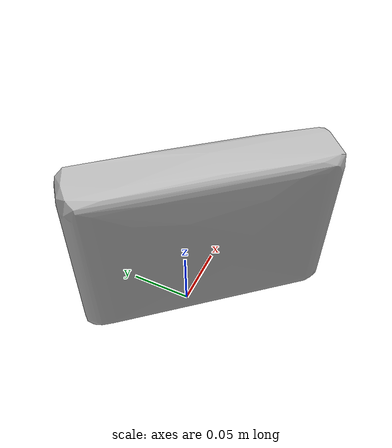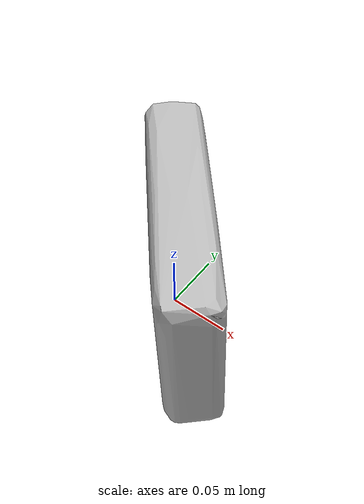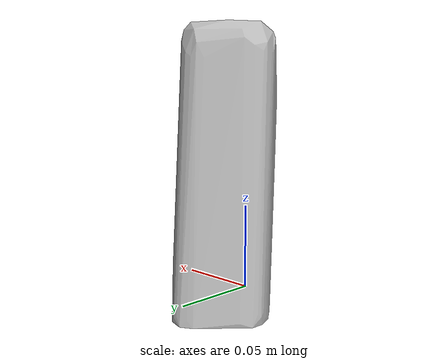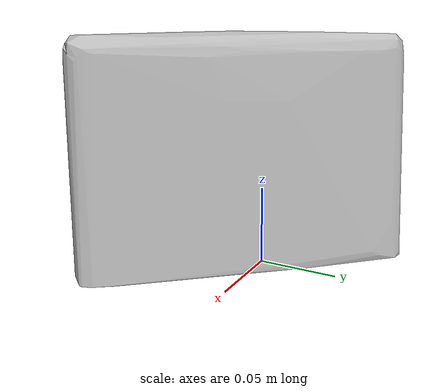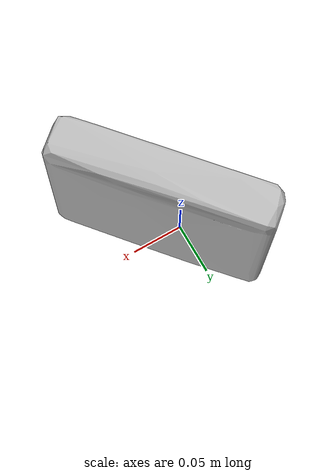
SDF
<?xml version='1.0'?>
<sdf version="1.4">
  <model name="nutrigrain_apple_cinnamon">
    <static>false</static>
    <link name="link">
      <inertial>
        <pose>0.014959386915097884 -0.006527438560393645 0.0738853768408827 1.5630213629828449 -0.0432646985710849 0.6984195999044385</pose>
        <mass>0.06752936135195287</mass>
        <inertia>
          <ixx>0.0006767940983881795</ixx>
          <ixy>7.763301964379866e-22</ixy>
          <ixz>-4.5643759314853107e-20</ixz>
          <iyy>0.0004791634125126763</iyy>
          <iyz>-4.467303335525936e-22</iyz>
          <izz>0.0002512707858465585</izz>
        </inertia>
      </inertial>
      <collision name="collision">
        <geometry>
          <mesh>
            <!-- Use a downsampled mesh for collisions -->
            <uri>model:///nutrigrain_apple_cinnamon/nutrigrain_apple_cinnamon_250_collision.obj</uri>
	        </mesh>
        </geometry>
        <surface>
      </surface>
      </collision>
      <visual name="visual">
        <geometry>
          <mesh>
            <uri>model:///nutrigrain_apple_cinnamon/optimized_tsdf_texture_mapped_mesh.obj</uri>
	        </mesh>
        </geometry>
        <material>
          <script>
            <uri>model:///nutrigrain_apple_cinnamon/nutrigrain_apple_cinnamon.material</uri>
            <name>nutrigrain_apple_cinnamon</name>
          </script>
        </material>
      </visual>
    </link>
  </model>
</sdf>
